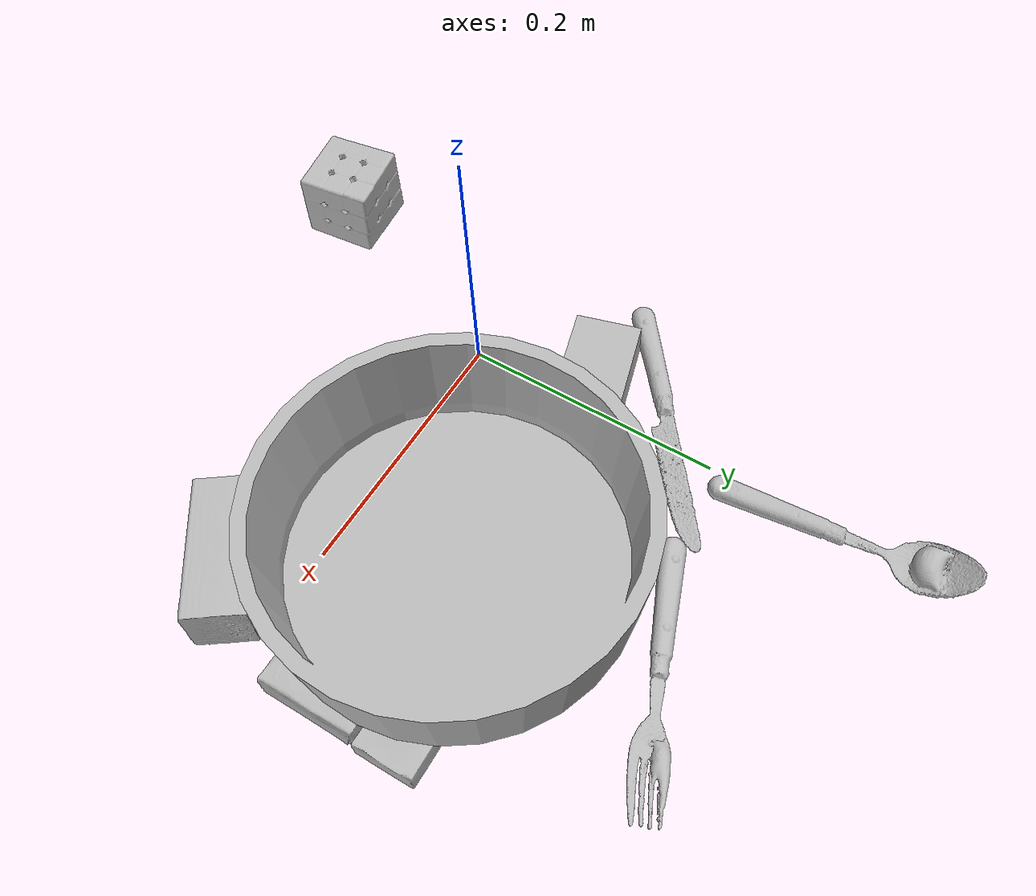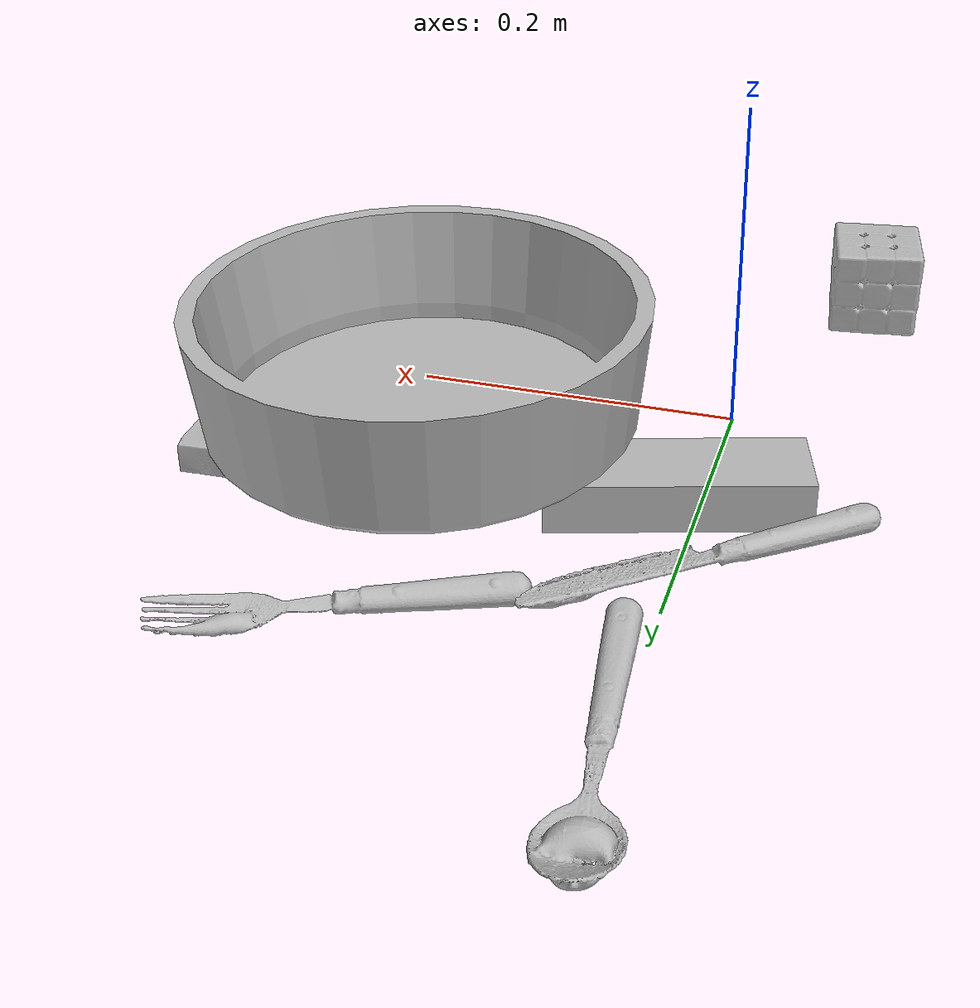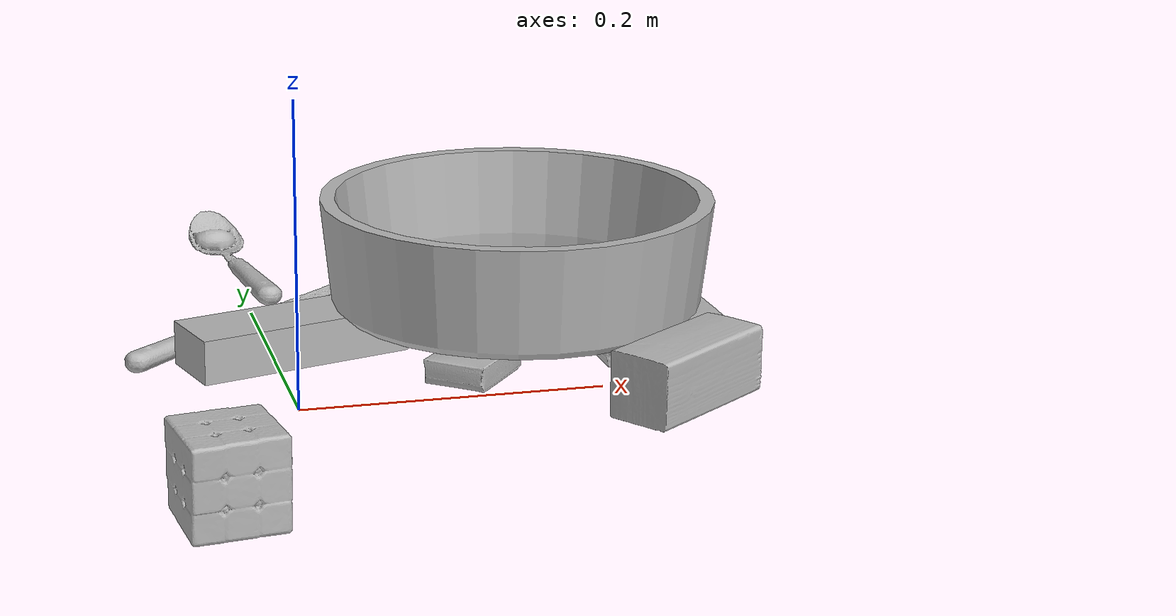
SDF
<sdf version="1.4">
  <world name="default">
    <light name="light1" type="point">
      <pose>0 0 1 0 0 0</pose>
      <diffuse>3 3 3 1</diffuse>
      <specular>3 3 3 1</specular>
    </light>
    <light name="light2" type="point">
      <pose>0 0.5 2 0 0 0</pose>
      <diffuse>1 1 1 1</diffuse>
      <specular>1 1 1 1</specular>
    </light>
    <light name="light3" type="point">
      <pose>0 0.5 2 0 0 0</pose>
      <diffuse>3 3 3 1</diffuse>
      <specular>3 3 3 1</specular>
    </light>
    <scene>
      <ambient>0.7 0.7 0.7</ambient>
    </scene>
    <model name="box11">
      <link name="link_box11">
        <collision name="default">
          <geometry>
            <mesh>
              <uri>model://jenga/collision_meshes/collision.obj</uri>
              <scale>1.0 1.0 1.0</scale>
            </mesh>
          </geometry>
          <surface>
            <friction>
              <ode>
                <mu>0.5</mu>
                <mu2>0.5</mu2>
              </ode>
            </friction>
          <contact>
        <ode>
            <max_vel>0</max_vel>
            <min_depth>0.0001</min_depth>
            <kp>1e8</kp>
        </ode>
    </contact></surface>
        </collision>
        <visual name="default">
          <geometry>
            <mesh>
              <uri>model://jenga/visual_meshes/visual.dae</uri>
              <scale>1.0 1.0 1.0</scale>
            </mesh>
          </geometry>
        </visual>
        <inertial>
          <mass>0.22063912451267242</mass>
          <pose>-2.502855807051674e-07 -0.00010250011109746993 -4.0923405322246253e-05 0.0 -7.34215461761844e-07 0.0</pose>
          <inertia>
            <ixx>6.1056206e-05</ixx>
            <iyy>0.00041371517</iyy>
            <izz>0.00044167612</izz>
            <ixy>0</ixy>
            <ixz>0</ixz>
            <iyz>0</iyz>
          </inertia>
        </inertial>
      </link>
      <pose>0.013366338796913624 0.10253868252038956 0.014999892562627792 8.367251848374317e-05 8.900241837235987e-06 -2.861486659813464</pose>
    </model>
    <model name="box12">
      <link name="link_box12">
        <collision name="default">
          <geometry>
            <mesh>
              <uri>model://sugar_box/collision_meshes/collision.obj</uri>
              <scale>0.5 0.5 0.5</scale>
            </mesh>
          </geometry>
          <surface>
            <friction>
              <ode>
                <mu>0.5</mu>
                <mu2>0.5</mu2>
              </ode>
            </friction>
          <contact>
        <ode>
            <max_vel>0</max_vel>
            <min_depth>0.0001</min_depth>
            <kp>1e8</kp>
        </ode>
    </contact></surface>
        </collision>
        <visual name="default">
          <geometry>
            <mesh>
              <uri>model://sugar_box/visual_meshes/visual.dae</uri>
              <scale>0.5 0.5 0.5</scale>
            </mesh>
          </geometry>
        </visual>
        <inertial>
          <mass>0.053318966180086136</mass>
          <pose>0.0005171863595023751 1.924554817378521e-05 -0.00018182402709499002 -0.00040462627129080113 0.001050663522124822 0.0026153787889376494</pose>
          <inertia>
            <ixx>1.1106302e-05</ixx>
            <iyy>3.5897858e-05</iyy>
            <izz>4.2974014e-05</izz>
            <ixy>0</ixy>
            <ixz>0</ixz>
            <iyz>0</iyz>
          </inertia>
        </inertial>
      </link>
      <pose>0.25614404678344727 0.12356027960777283 0.011399305425584316 0.0007747565760288183 -0.023433083944719196 -3.139247480872616</pose>
    </model>
    <model name="box13">
      <link name="link_box13">
        <collision name="default">
          <geometry>
            <mesh>
              <uri>model://gelatin_box/collision_meshes/collision.obj</uri>
              <scale>1.0 1.0 1.0</scale>
            </mesh>
          </geometry>
          <surface>
            <friction>
              <ode>
                <mu>0.5</mu>
                <mu2>0.5</mu2>
              </ode>
            </friction>
          <contact>
        <ode>
            <max_vel>0</max_vel>
            <min_depth>0.0001</min_depth>
            <kp>1e8</kp>
        </ode>
    </contact></surface>
        </collision>
        <visual name="default">
          <geometry>
            <mesh>
              <uri>model://gelatin_box/visual_meshes/visual.dae</uri>
              <scale>1.0 1.0 1.0</scale>
            </mesh>
          </geometry>
        </visual>
        <inertial>
          <mass>0.19111748039722443</mass>
          <pose>0.0004319618456065655 0.00011156871914863586 -0.00036403207923285663 -0.0010503719765995955 -0.004755818690324038 0.01644055947160125</pose>
          <inertia>
            <ixx>0.00013491335</ixx>
            <iyy>9.63679e-05</iyy>
            <izz>0.00020536821</izz>
            <ixy>0</ixy>
            <ixz>0</ixz>
            <iyz>0</iyz>
          </inertia>
        </inertial>
      </link>
      <pose>0.25481978058815 0.06374581903219223 0.015435061417520046 -0.0067853257167154795 0.013054141720985605 1.5720021616651811</pose>
    </model>
    <model name="box21">
      <link name="link_box21">
        <collision name="default">
          <geometry>
            <mesh>
              <uri>model://pudding_box/collision_meshes/collision.obj</uri>
              <scale>0.5 0.5 0.5</scale>
            </mesh>
          </geometry>
          <surface>
            <friction>
              <ode>
                <mu>0.5</mu>
                <mu2>0.5</mu2>
              </ode>
            </friction>
          <contact>
        <ode>
            <max_vel>0</max_vel>
            <min_depth>0.0001</min_depth>
            <kp>1e8</kp>
        </ode>
    </contact></surface>
        </collision>
        <visual name="default">
          <geometry>
            <mesh>
              <uri>model://pudding_box/visual_meshes/visual.dae</uri>
              <scale>0.5 0.5 0.5</scale>
            </mesh>
          </geometry>
        </visual>
        <inertial>
          <mass>0.037507444620132446</mass>
          <pose>0.00024474109522998333 0.0004033942532259971 -0.0002594413817860186 0.00521310221980129 -0.006603800139852783 0.020079832606434308</pose>
          <inertia>
            <ixx>1.0600058e-05</ixx>
            <iyy>7.131795e-06</iyy>
            <izz>1.5653754e-05</izz>
            <ixy>0</ixy>
            <ixz>0</ixz>
            <iyz>0</iyz>
          </inertia>
        </inertial>
      </link>
      <pose>0.12219968438148499 0.03590216860175133 0.009862903505563736 0.0223485144834003 -0.011391693320737301 -0.7443957158276294</pose>
    </model>
    <model name="box22">
      <link name="link_box22">
        <collision name="default">
          <geometry>
            <mesh>
              <uri>model://rubiks_cube/collision_meshes/collision.obj</uri>
              <scale>1.0 1.0 1.0</scale>
            </mesh>
          </geometry>
          <surface>
            <friction>
              <ode>
                <mu>0.5</mu>
                <mu2>0.5</mu2>
              </ode>
            </friction>
          <contact>
        <ode>
            <max_vel>0</max_vel>
            <min_depth>0.0001</min_depth>
            <kp>1e8</kp>
        </ode>
    </contact></surface>
        </collision>
        <visual name="default">
          <geometry>
            <mesh>
              <uri>model://rubiks_cube/visual_meshes/visual.dae</uri>
              <scale>1.0 1.0 1.0</scale>
            </mesh>
          </geometry>
        </visual>
        <inertial>
          <mass>0.19412381947040558</mass>
          <pose>2.6721041649580002e-05 5.2569666877388954e-05 -7.264316082000732e-06 -0.05467327462967597 -0.09814157667114887 -0.034454893398498845</pose>
          <inertia>
            <ixx>0.000107266445</ixx>
            <iyy>0.0001067662</iyy>
            <izz>0.00010815532</izz>
            <ixy>0</ixy>
            <ixz>0</ixz>
            <iyz>0</iyz>
          </inertia>
        </inertial>
      </link>
      <pose>-0.06740758568048477 -0.16470441222190857 0.028678949922323227 -4.006684269812706e-06 -1.79532697074722e-06 -2.9938386372105588</pose>
    </model>
    <model name="box23">
      <link name="link_box23">
        <collision name="default">
          <geometry>
            <mesh>
              <uri>model://wood_block/collision_meshes/collision.obj</uri>
              <scale>0.5 0.5 0.5</scale>
            </mesh>
          </geometry>
          <surface>
            <friction>
              <ode>
                <mu>0.5</mu>
                <mu2>0.5</mu2>
              </ode>
            </friction>
          <contact>
        <ode>
            <max_vel>0</max_vel>
            <min_depth>0.0001</min_depth>
            <kp>1e8</kp>
        </ode>
    </contact></surface>
        </collision>
        <visual name="default">
          <geometry>
            <mesh>
              <uri>model://wood_block/visual_meshes/visual.dae</uri>
              <scale>0.5 0.5 0.5</scale>
            </mesh>
          </geometry>
        </visual>
        <inertial>
          <mass>0.12021861970424652</mass>
          <pose>-2.9066577553749084e-06 -0.000285404734313488 0.00013204291462898254 -0.05220783851692058 -0.005192695246339916 -0.006861377900732038</pose>
          <inertia>
            <ixx>4.0217674e-05</ixx>
            <iyy>0.00012704768</iyy>
            <izz>0.00012657243</izz>
            <ixy>0</ixy>
            <ixz>0</ixz>
            <iyz>0</iyz>
          </inertia>
        </inertial>
      </link>
      <pose>0.2416103482246399 -0.043525196611881256 0.022629259154200554 -0.005208371641307249 0.005718732034637688 0.6179823790225412</pose>
    </model>
    <model name="plate1">
      <link name="link_plate1">
        <collision name="default">
          <geometry>
            <mesh>
              <uri>model://pan_tefal/collision_meshes/collision.obj</uri>
              <scale>1.0 1.0 1.0</scale>
            </mesh>
          </geometry>
          <surface>
            <friction>
              <ode>
                <mu>0.5</mu>
                <mu2>0.5</mu2>
              </ode>
            </friction>
          <contact>
        <ode>
            <max_vel>0</max_vel>
            <min_depth>0.0001</min_depth>
            <kp>1e8</kp>
        </ode>
    </contact></surface>
        </collision>
        <visual name="default">
          <geometry>
            <mesh>
              <uri>model://pan_tefal/visual_meshes/visual.dae</uri>
              <scale>1.0 1.0 1.0</scale>
            </mesh>
          </geometry>
        </visual>
        <inertial>
          <mass>1.1174349784851074</mass>
          <pose>-0.0001800186582840979 3.278696021880023e-05 -0.00851493701338768 0.0008190242272949328 -0.00033013996347192336 -0.33186114310704434</pose>
          <inertia>
            <ixx>0.0077136005</ixx>
            <iyy>0.0077633304</iyy>
            <izz>0.014199255</izz>
            <ixy>0</ixy>
            <ixz>0</ixz>
            <iyz>0</iyz>
          </inertia>
        </inertial>
      </link>
      <pose>0.16574612259864807 0.09373939782381058 0.06815992295742035 0.0007788498046403698 0.0007201831087610669 -1.8138502254902116</pose>
    </model>
    <model name="silverware1">
      <link name="link_silverware1">
        <collision name="default">
          <geometry>
            <mesh>
              <uri>model://spoon/collision_meshes/collision.obj</uri>
              <scale>1.0 1.0 1.0</scale>
            </mesh>
          </geometry>
          <surface>
            <friction>
              <ode>
                <mu>0.5</mu>
                <mu2>0.5</mu2>
              </ode>
            </friction>
          <contact>
        <ode>
            <max_vel>0</max_vel>
            <min_depth>0.0001</min_depth>
            <kp>1e8</kp>
        </ode>
    </contact></surface>
        </collision>
        <visual name="default">
          <geometry>
            <mesh>
              <uri>model://spoon/visual_meshes/visual.dae</uri>
              <scale>1.0 1.0 1.0</scale>
            </mesh>
          </geometry>
        </visual>
        <inertial>
          <mass>0.03790392354130745</mass>
          <pose>-0.005526311695575714 -0.0016034170985221863 -0.0007271655485965312 0.03521845899657386 -0.039065840459698326 0.006150612465639116</pose>
          <inertia>
            <ixx>2.1082776e-06</ixx>
            <iyy>0.00014422317</iyy>
            <izz>0.00014526285</izz>
            <ixy>0</ixy>
            <ixz>0</ixz>
            <iyz>0</iyz>
          </inertia>
        </inertial>
      </link>
      <pose>0.0028229791205376387 0.30421963334083557 0.00838526152074337 0.006728999256463137 0.026892979930714458 1.6844318005314856</pose>
    </model>
    <model name="silverware2">
      <link name="link_silverware2">
        <collision name="default">
          <geometry>
            <mesh>
              <uri>model://fork/collision_meshes/collision.obj</uri>
              <scale>1.0 1.0 1.0</scale>
            </mesh>
          </geometry>
          <surface>
            <friction>
              <ode>
                <mu>0.5</mu>
                <mu2>0.5</mu2>
              </ode>
            </friction>
          <contact>
        <ode>
            <max_vel>0</max_vel>
            <min_depth>0.0001</min_depth>
            <kp>1e8</kp>
        </ode>
    </contact></surface>
        </collision>
        <visual name="default">
          <geometry>
            <mesh>
              <uri>model://fork/visual_meshes/visual.dae</uri>
              <scale>1.0 1.0 1.0</scale>
            </mesh>
          </geometry>
        </visual>
        <inertial>
          <mass>0.029004188254475594</mass>
          <pose>-0.02957005612552166 0.0004658824182115495 0.00032188621116802096 -0.013551880215526314 -0.010977843078655252 0.014453906566097012</pose>
          <inertia>
            <ixx>1.0167608e-06</ixx>
            <iyy>7.572158e-05</iyy>
            <izz>7.617634e-05</izz>
            <ixy>0</ixy>
            <ixz>0</ixz>
            <iyz>0</iyz>
          </inertia>
        </inertial>
      </link>
      <pose>0.15797138214111328 0.24197816848754883 0.005688179284334183 -0.1899182521574127 0.024815794508662437 0.3810355829501845</pose>
    </model>
    <model name="silverware3">
      <link name="link_silverware3">
        <collision name="default">
          <geometry>
            <mesh>
              <uri>model://knife/collision_meshes/collision.obj</uri>
              <scale>1.0 1.0 1.0</scale>
            </mesh>
          </geometry>
          <surface>
            <friction>
              <ode>
                <mu>0.5</mu>
                <mu2>0.5</mu2>
              </ode>
            </friction>
          <contact>
        <ode>
            <max_vel>0</max_vel>
            <min_depth>0.0001</min_depth>
            <kp>1e8</kp>
        </ode>
    </contact></surface>
        </collision>
        <visual name="default">
          <geometry>
            <mesh>
              <uri>model://knife/visual_meshes/visual.dae</uri>
              <scale>1.0 1.0 1.0</scale>
            </mesh>
          </geometry>
        </visual>
        <inertial>
          <mass>0.015800314024090767</mass>
          <pose>-0.023785250261425972 0.0015275126788765192 5.0620288675418124e-05 0.07305498599936577 0.01724841842216061 -0.0074098211805850795</pose>
          <inertia>
            <ixx>4.48477e-07</ixx>
            <iyy>6.0702252e-05</iyy>
            <izz>6.0846694e-05</izz>
            <ixy>0</ixy>
            <ixz>0</ixz>
            <iyz>0</iyz>
          </inertia>
        </inertial>
      </link>
      <pose>-0.012905139476060867 0.15493597090244293 0.007946576923131943 -0.023838917149087396 -0.01454321540094987 0.6629549304126964</pose>
    </model>
  <physics type="ode">
      <max_contacts>50</max_contacts>
      <ode>
        <solver>
          <type>quick</type>
          <iters>75</iters>
        </solver>
        <constraints>
          <contact_max_correcting_vel>0</contact_max_correcting_vel>
          <contact_surface_layer>0</contact_surface_layer>
        </constraints>
      </ode>
    </physics></world>
</sdf>
